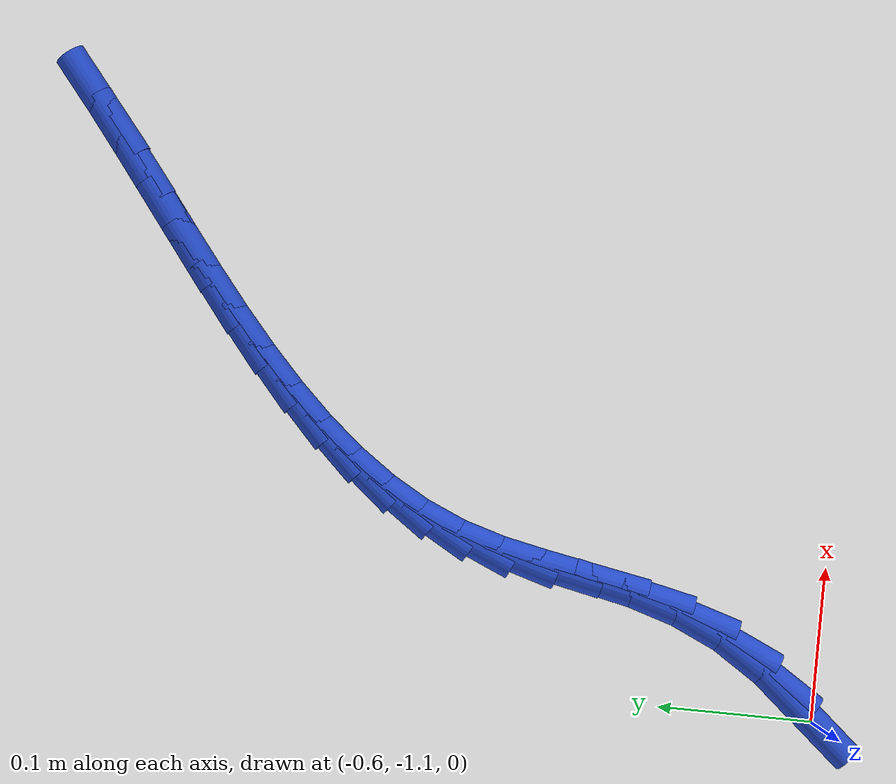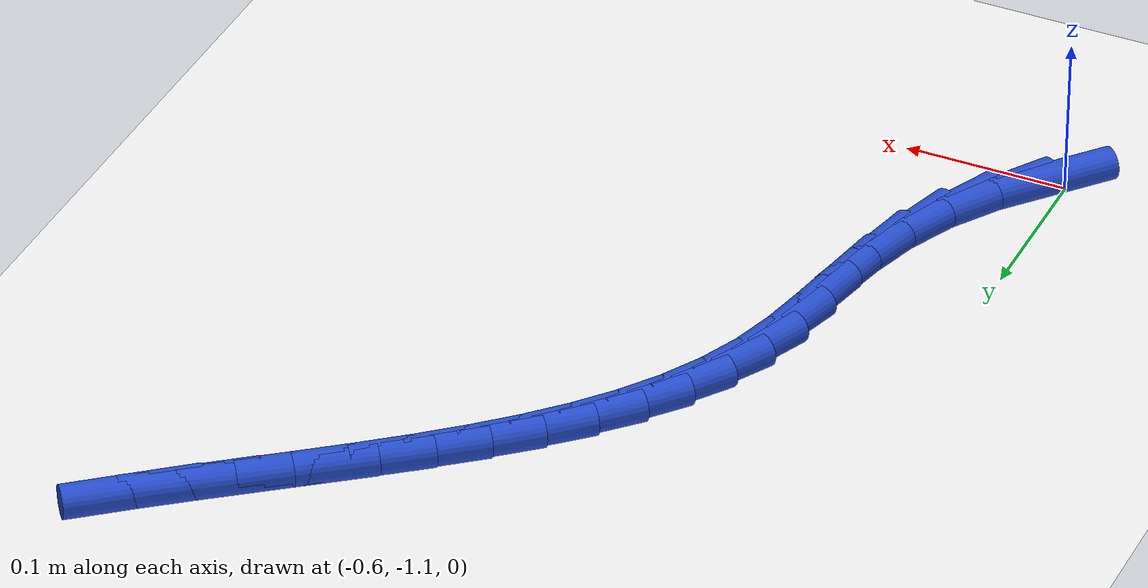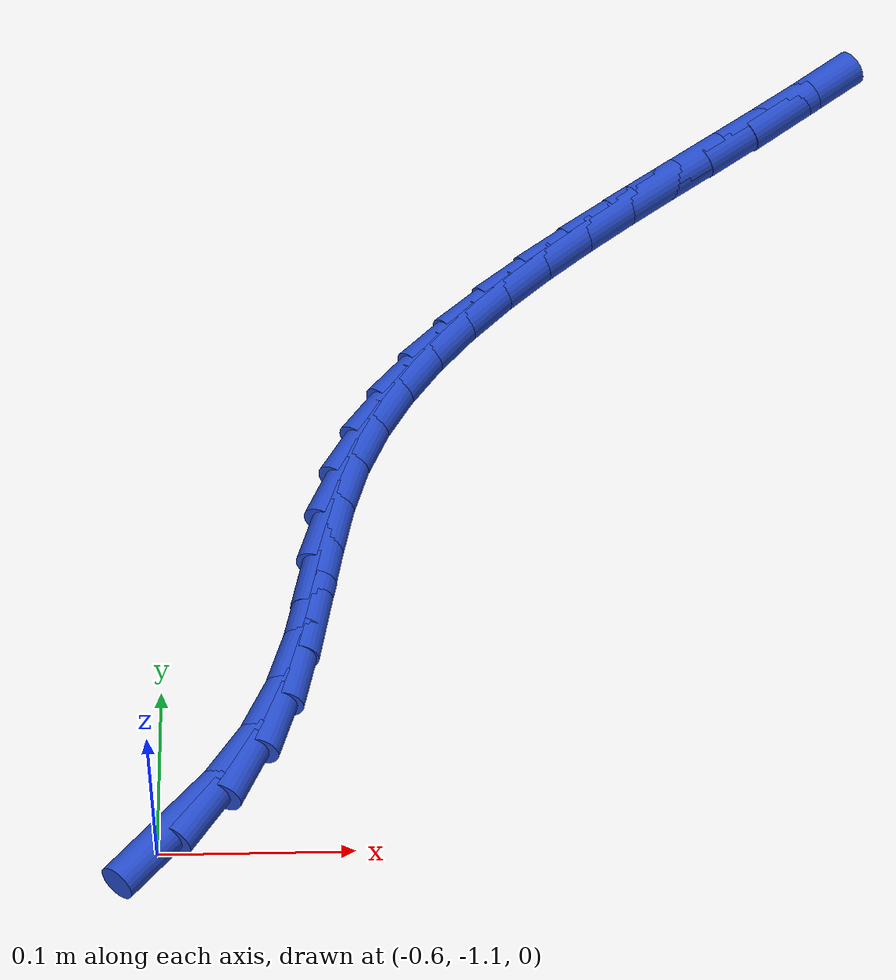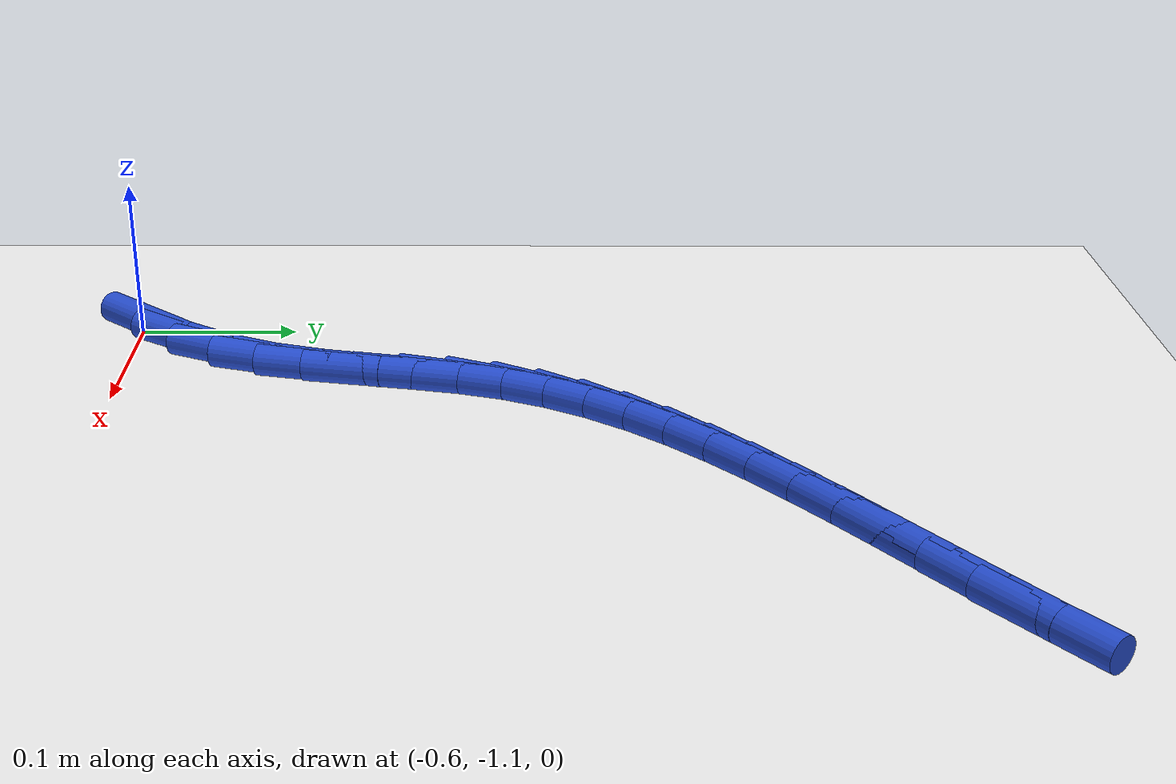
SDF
<sdf version="1.6">
 <world name="default">
  <model name="ground_plane">
   <static>1</static>
   <link name="link">
    <collision name="collision">
     <geometry><plane><normal>0 0 1</normal><size>100 100</size></plane></geometry>
     <surface><friction><ode><mu>100</mu><mu2>50</mu2></ode></friction></surface>
    </collision>
    <visual name="visual">
     <cast_shadows>0</cast_shadows>
     <geometry><plane><normal>0 0 1</normal><size>100 100</size></plane></geometry>
     <material>
      <script><uri>file://media/materials/scripts/gazebo.material</uri><name>Gazebo/WhiteGlow</name></script>
     </material>
    </visual>
   </link>
  </model>
  <model name="line">
   <link name="link_208">
    <pose>-0.5933781583776144 -1.0930753699277114 0.01 0 1.57 0.8615530612985227</pose>
    <collision name="collision">
     <geometry><cylinder><radius>0.01</radius><length>0.08</length></cylinder></geometry>
    </collision>
    <visual name="visual">
     <material>
      <script><name>Gazebo/Blue</name><uri>file://media/materials/scripts/gazebo.material</uri></script>
     </material>
     <geometry><cylinder><radius>0.01</radius><length>0.08</length></cylinder></geometry>
    </visual>
   </link>
   <link name="link_209">
    <pose>-0.5693682329034429 -1.0650987424696374 0.01 0 1.57 0.9917604287195207</pose>
    <collision name="collision">
     <geometry><cylinder><radius>0.01</radius><length>0.08</length></cylinder></geometry>
    </collision>
    <visual name="visual">
     <material>
      <script><name>Gazebo/Blue</name><uri>file://media/materials/scripts/gazebo.material</uri></script>
     </material>
     <geometry><cylinder><radius>0.01</radius><length>0.08</length></cylinder></geometry>
    </visual>
   </link>
   <link name="link_210">
    <pose>-0.5502738087052013 -1.0358930588325066 0.01 0 1.57 1.1434822366172548</pose>
    <collision name="collision">
     <geometry><cylinder><radius>0.01</radius><length>0.08</length></cylinder></geometry>
    </collision>
    <visual name="visual">
     <material>
      <script><name>Gazebo/Blue</name><uri>file://media/materials/scripts/gazebo.material</uri></script>
     </material>
     <geometry><cylinder><radius>0.01</radius><length>0.08</length></cylinder></geometry>
    </visual>
   </link>
   <link name="link_211">
    <pose>-0.5366710723699814 -1.00602149989562 0.01 0 1.57 1.2728337060227228</pose>
    <collision name="collision">
     <geometry><cylinder><radius>0.01</radius><length>0.08</length></cylinder></geometry>
    </collision>
    <visual name="visual">
     <material>
      <script><name>Gazebo/Blue</name><uri>file://media/materials/scripts/gazebo.material</uri></script>
     </material>
     <geometry><cylinder><radius>0.01</radius><length>0.08</length></cylinder></geometry>
    </visual>
   </link>
   <link name="link_212">
    <pose>-0.5274229296519259 -0.9759075873223464 0.01 0 1.57 1.3564356915451234</pose>
    <collision name="collision">
     <geometry><cylinder><radius>0.01</radius><length>0.08</length></cylinder></geometry>
    </collision>
    <visual name="visual">
     <material>
      <script><name>Gazebo/Blue</name><uri>file://media/materials/scripts/gazebo.material</uri></script>
     </material>
     <geometry><cylinder><radius>0.01</radius><length>0.08</length></cylinder></geometry>
    </visual>
   </link>
   <link name="link_213">
    <pose>-0.5208976295952252 -0.9459345205084257 0.01 0 1.57 1.3883181408639877</pose>
    <collision name="collision">
     <geometry><cylinder><radius>0.01</radius><length>0.08</length></cylinder></geometry>
    </collision>
    <visual name="visual">
     <material>
      <script><name>Gazebo/Blue</name><uri>file://media/materials/scripts/gazebo.material</uri></script>
     </material>
     <geometry><cylinder><radius>0.01</radius><length>0.08</length></cylinder></geometry>
    </visual>
   </link>
   <link name="link_214">
    <pose>-0.5154633733664861 -0.9164854949468252 0.01 0 1.57 1.3644338840171686</pose>
    <collision name="collision">
     <geometry><cylinder><radius>0.01</radius><length>0.08</length></cylinder></geometry>
    </collision>
    <visual name="visual">
     <material>
      <script><name>Gazebo/Blue</name><uri>file://media/materials/scripts/gazebo.material</uri></script>
     </material>
     <geometry><cylinder><radius>0.01</radius><length>0.08</length></cylinder></geometry>
    </visual>
   </link>
   <link name="link_215">
    <pose>-0.5094883621323156 -0.8879437061305125 0.01 0 1.57 1.2808063486901362</pose>
    <collision name="collision">
     <geometry><cylinder><radius>0.01</radius><length>0.08</length></cylinder></geometry>
    </collision>
    <visual name="visual">
     <material>
      <script><name>Gazebo/Blue</name><uri>file://media/materials/scripts/gazebo.material</uri></script>
     </material>
     <geometry><cylinder><radius>0.01</radius><length>0.08</length></cylinder></geometry>
    </visual>
   </link>
   <link name="link_216">
    <pose>-0.5013552949605204 -0.8606882901026899 0.01 0 1.57 1.1623980674648844</pose>
    <collision name="collision">
     <geometry><cylinder><radius>0.01</radius><length>0.08</length></cylinder></geometry>
    </collision>
    <visual name="visual">
     <material>
      <script><name>Gazebo/Blue</name><uri>file://media/materials/scripts/gazebo.material</uri></script>
     </material>
     <geometry><cylinder><radius>0.01</radius><length>0.08</length></cylinder></geometry>
    </visual>
   </link>
   <link name="link_217">
    <pose>-0.49019158669028645 -0.8348898605679216 0.01 0 1.57 1.0518522162417783</pose>
    <collision name="collision">
     <geometry><cylinder><radius>0.01</radius><length>0.08</length></cylinder></geometry>
    </collision>
    <visual name="visual">
     <material>
      <script><name>Gazebo/Blue</name><uri>file://media/materials/scripts/gazebo.material</uri></script>
     </material>
     <geometry><cylinder><radius>0.01</radius><length>0.08</length></cylinder></geometry>
    </visual>
   </link>
   <link name="link_218">
    <pose>-0.4762122281999477 -0.8104145071319911 0.01 0 1.57 0.9550030000155223</pose>
    <collision name="collision">
     <geometry><cylinder><radius>0.01</radius><length>0.08</length></cylinder></geometry>
    </collision>
    <visual name="visual">
     <material>
      <script><name>Gazebo/Blue</name><uri>file://media/materials/scripts/gazebo.material</uri></script>
     </material>
     <geometry><cylinder><radius>0.01</radius><length>0.08</length></cylinder></geometry>
    </visual>
   </link>
   <link name="link_219">
    <pose>-0.4597183781928676 -0.7871041921872107 0.01 0 1.57 0.8728625123797917</pose>
    <collision name="collision">
     <geometry><cylinder><radius>0.01</radius><length>0.08</length></cylinder></geometry>
    </collision>
    <visual name="visual">
     <material>
      <script><name>Gazebo/Blue</name><uri>file://media/materials/scripts/gazebo.material</uri></script>
     </material>
     <geometry><cylinder><radius>0.01</radius><length>0.08</length></cylinder></geometry>
    </visual>
   </link>
   <link name="link_220">
    <pose>-0.44101119537241 -0.7648008781258927 0.01 0 1.57 0.8052415359440357</pose>
    <collision name="collision">
     <geometry><cylinder><radius>0.01</radius><length>0.08</length></cylinder></geometry>
    </collision>
    <visual name="visual">
     <material>
      <script><name>Gazebo/Blue</name><uri>file://media/materials/scripts/gazebo.material</uri></script>
     </material>
     <geometry><cylinder><radius>0.01</radius><length>0.08</length></cylinder></geometry>
    </visual>
   </link>
   <link name="link_221">
    <pose>-0.42039183844193895 -0.7433465273403502 0.01 0 1.57 0.7512914214050141</pose>
    <collision name="collision">
     <geometry><cylinder><radius>0.01</radius><length>0.08</length></cylinder></geometry>
    </collision>
    <visual name="visual">
     <material>
      <script><name>Gazebo/Blue</name><uri>file://media/materials/scripts/gazebo.material</uri></script>
     </material>
     <geometry><cylinder><radius>0.01</radius><length>0.08</length></cylinder></geometry>
    </visual>
   </link>
   <link name="link_222">
    <pose>-0.39816146610481784 -0.7225831022228952 0.01 0 1.57 0.7099275674421129</pose>
    <collision name="collision">
     <geometry><cylinder><radius>0.01</radius><length>0.08</length></cylinder></geometry>
    </collision>
    <visual name="visual">
     <material>
      <script><name>Gazebo/Blue</name><uri>file://media/materials/scripts/gazebo.material</uri></script>
     </material>
     <geometry><cylinder><radius>0.01</radius><length>0.08</length></cylinder></geometry>
    </visual>
   </link>
   <link name="link_223">
    <pose>-0.37462123706441064 -0.7023525651658405 0.01 0 1.57 0.6800964773262818</pose>
    <collision name="collision">
     <geometry><cylinder><radius>0.01</radius><length>0.08</length></cylinder></geometry>
    </collision>
    <visual name="visual">
     <material>
      <script><name>Gazebo/Blue</name><uri>file://media/materials/scripts/gazebo.material</uri></script>
     </material>
     <geometry><cylinder><radius>0.01</radius><length>0.08</length></cylinder></geometry>
    </visual>
   </link>
   <link name="link_224">
    <pose>-0.3500723100240815 -0.6824968785614991 0.01 0 1.57 0.660918708942969</pose>
    <collision name="collision">
     <geometry><cylinder><radius>0.01</radius><length>0.08</length></cylinder></geometry>
    </collision>
    <visual name="visual">
     <material>
      <script><name>Gazebo/Blue</name><uri>file://media/materials/scripts/gazebo.material</uri></script>
     </material>
     <geometry><cylinder><radius>0.01</radius><length>0.08</length></cylinder></geometry>
    </visual>
   </link>
   <link name="link_225">
    <pose>-0.32481584368719374 -0.6628580048021832 0.01 0 1.57 0.6517532258694411</pose>
    <collision name="collision">
     <geometry><cylinder><radius>0.01</radius><length>0.08</length></cylinder></geometry>
    </collision>
    <visual name="visual">
     <material>
      <script><name>Gazebo/Blue</name><uri>file://media/materials/scripts/gazebo.material</uri></script>
     </material>
     <geometry><cylinder><radius>0.01</radius><length>0.08</length></cylinder></geometry>
    </visual>
   </link>
   <link name="link_226">
    <pose>-0.2991529967571114 -0.6432779062802051 0.01 0 1.57 0.6522186350971276</pose>
    <collision name="collision">
     <geometry><cylinder><radius>0.01</radius><length>0.08</length></cylinder></geometry>
    </collision>
    <visual name="visual">
     <material>
      <script><name>Gazebo/Blue</name><uri>file://media/materials/scripts/gazebo.material</uri></script>
     </material>
     <geometry><cylinder><radius>0.01</radius><length>0.08</length></cylinder></geometry>
    </visual>
   </link>
   <link name="link_227">
    <pose>-0.2733849279371982 -0.6235985453878777 0.01 0 1.57 0.6621927953512902</pose>
    <collision name="collision">
     <geometry><cylinder><radius>0.01</radius><length>0.08</length></cylinder></geometry>
    </collision>
    <visual name="visual">
     <material>
      <script><name>Gazebo/Blue</name><uri>file://media/materials/scripts/gazebo.material</uri></script>
     </material>
     <geometry><cylinder><radius>0.01</radius><length>0.08</length></cylinder></geometry>
    </visual>
   </link>
   <link name="link_228">
    <pose>-0.24781279593081798 -0.6036618845175135 0.01 0 1.57 0.6818006174655756</pose>
    <collision name="collision">
     <geometry><cylinder><radius>0.01</radius><length>0.08</length></cylinder></geometry>
    </collision>
    <visual name="visual">
     <material>
      <script><name>Gazebo/Blue</name><uri>file://media/materials/scripts/gazebo.material</uri></script>
     </material>
     <geometry><cylinder><radius>0.01</radius><length>0.08</length></cylinder></geometry>
    </visual>
   </link>
  </model>
 </world>
</sdf>
